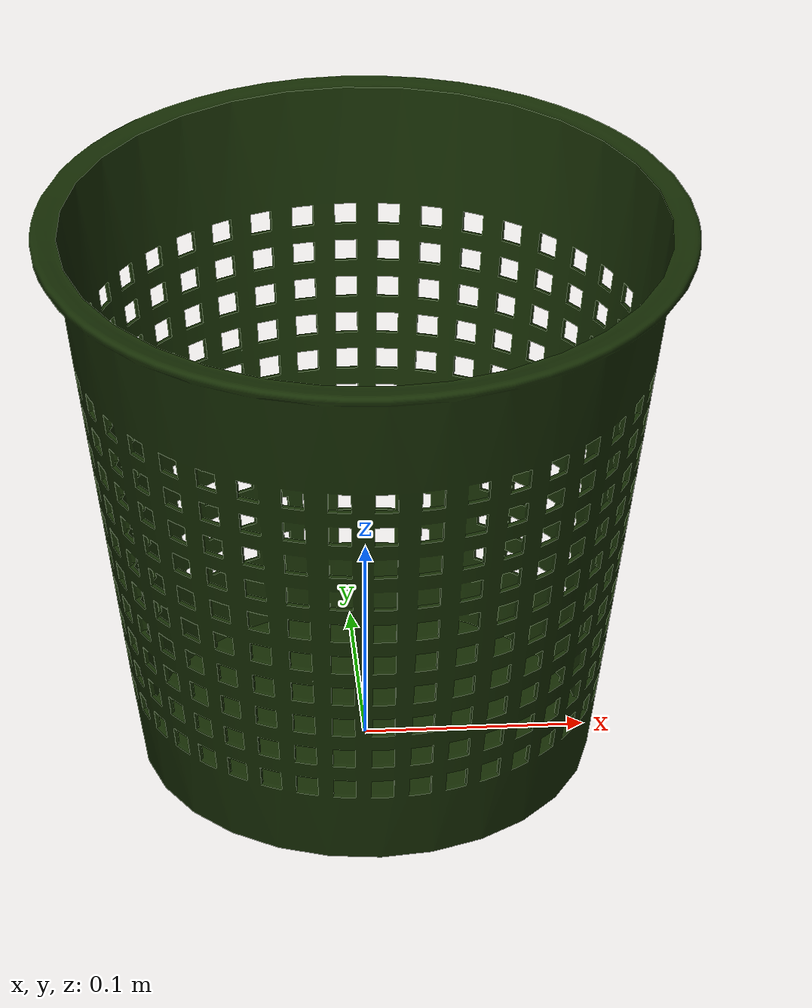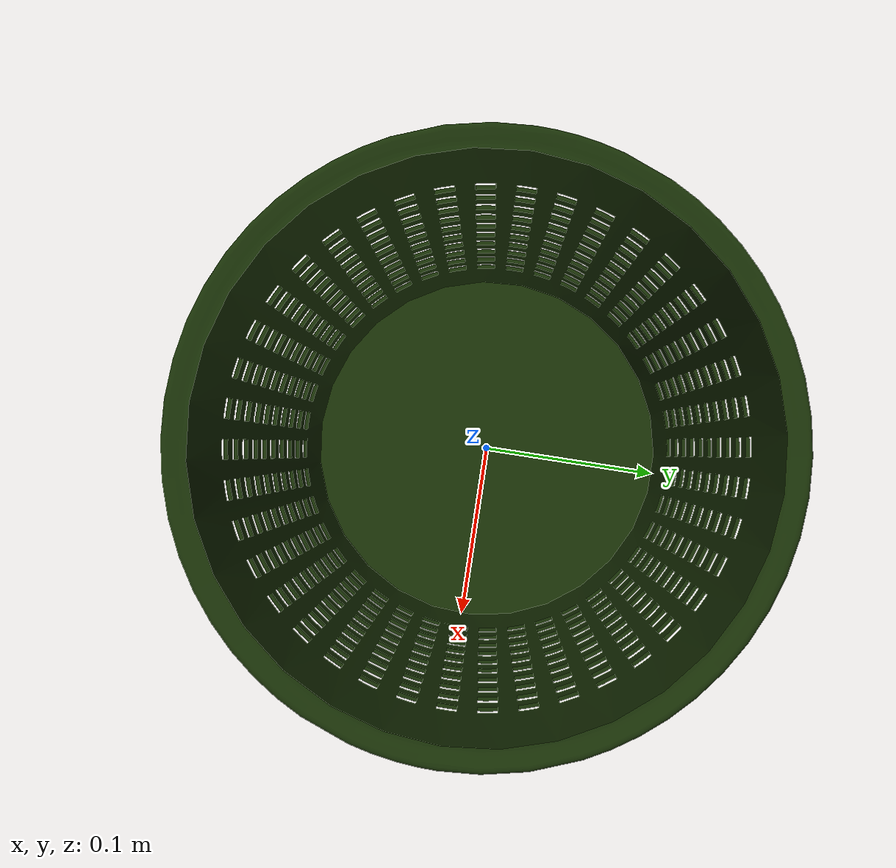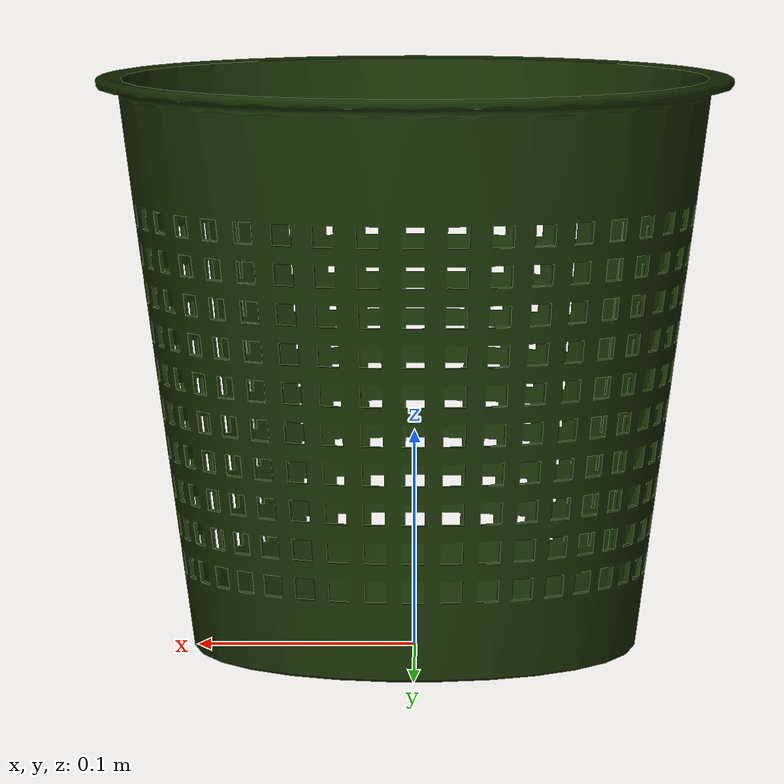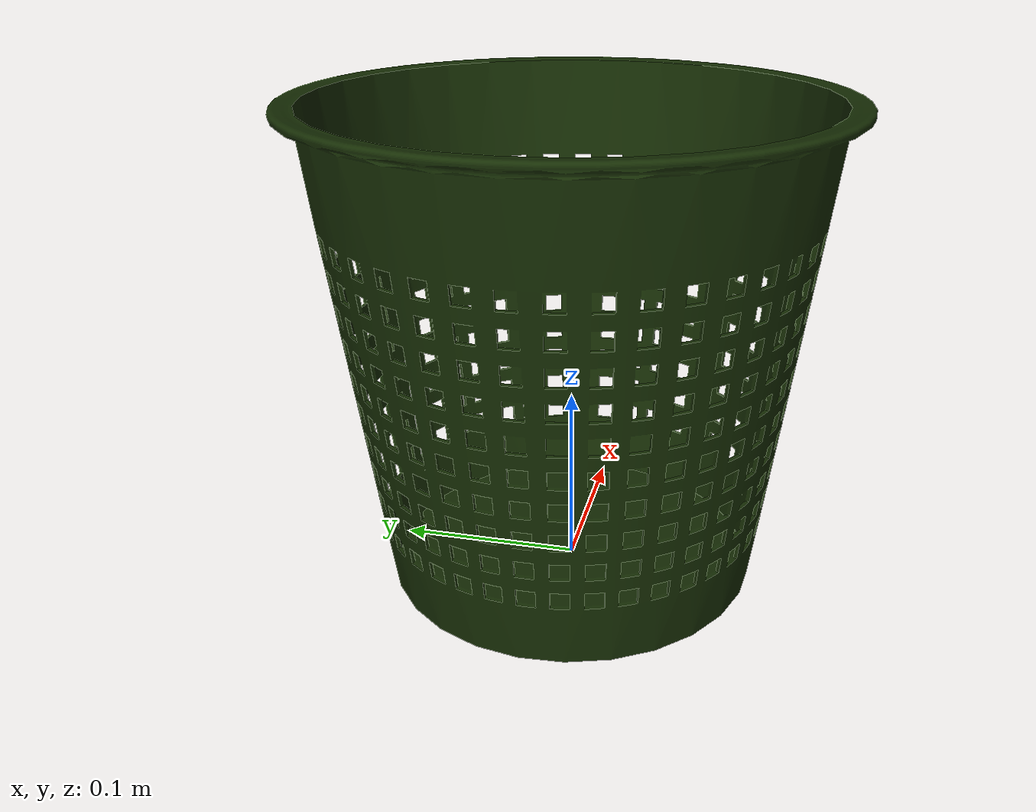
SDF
<sdf version='1.6'>
  <model name='waste_bin'>
  <static>true</static>
    <link name='link'>
      <collision name="collision">
        <geometry>
          <mesh>
            <scale>1 1 1</scale>
            <uri>model://waste_bin/meshes/waste_bin.dae</uri>
          </mesh>
        </geometry>
      </collision>
      <visual name='visual'>
        <geometry>
          <mesh>
            <scale>1 1 1</scale>
            <uri>model://waste_bin/meshes/waste_bin.dae</uri>
          </mesh>
        </geometry>
      </visual>
    </link>
  </model>
</sdf>
